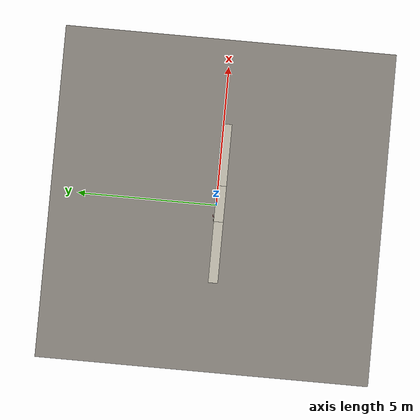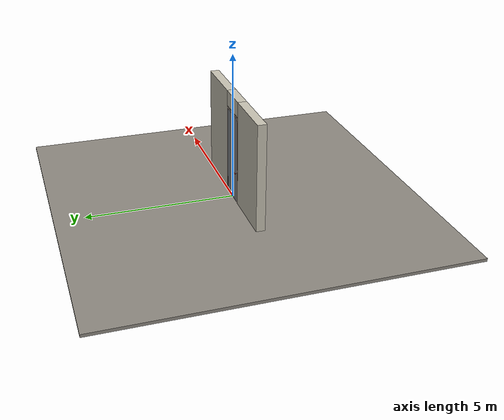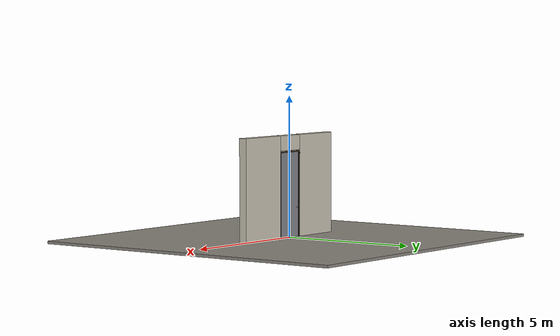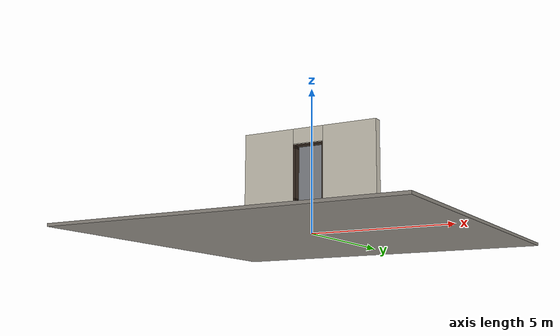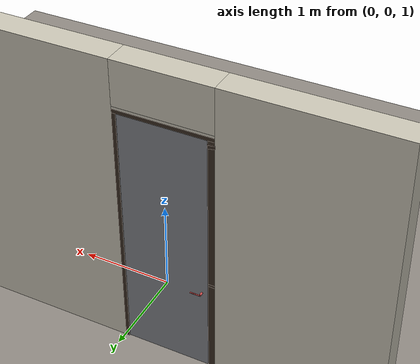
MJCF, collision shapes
<?xml version="1.0" ?>
<mujoco model="db0354_pivot_minimal">
  <compiler angle="radian" meshdir="../../hardware" texturedir="../../textures" autolimits="true" inertiafromgeom="false"/>
  <option timestep="0.002" integrator="implicitfast" cone="elliptic" impratio="10" noslip_iterations="3">
    <flag multiccd="enable"/>
  </option>
  <size memory="16M"/>
  <default>
    <geom condim="4" solref="0.005 1" solimp="0.95 0.99 0.001"/>
    <joint solreflimit="0.005 1" solimplimit="0.95 0.99 0.001"/>
    <tendon solreflimit="0.005 1"/>
    <equality solref="0.002 1"/>
  </default>
  <visual>
    <headlight ambient="0.4 0.4 0.4" diffuse="0.7 0.7 0.7" specular="0.2 0.2 0.2"/>
    <quality shadowsize="4096"/>
    <map znear="0.01" zfar="60"/>
  </visual>
  <asset>
    <mesh name="lever_57205841c3" file="lever_57205841c3.obj"/>
    <material name="mat_floor" rgba="0.55 0.53 0.5 1" specular="0.2" shininess="0.15" reflectance="0"/>
    <material name="mat_wall" rgba="0.78 0.76 0.7 1" specular="0.2" shininess="0.1" reflectance="0"/>
    <material name="mat_leaf" rgba="0.5 0.51 0.53 1" specular="0.2" shininess="0.35" reflectance="0"/>
    <material name="mat_hinge" rgba="0.65 0.66 0.68 1" specular="0.74" shininess="0.5" reflectance="0.36"/>
    <material name="mat_op_black_matte_metal" rgba="0.05 0.05 0.05 1" specular="0.38" shininess="0.3" reflectance="0.12"/>
    <material name="mat_trim" rgba="0.85 0.66 0.3 1" specular="0.8" shininess="0.75" reflectance="0.4"/>
    <material name="mat_bolt" rgba="0.75 0.76 0.77 1" specular="0.8" shininess="0.65" reflectance="0.4"/>
    <material name="mat_deadbolt" rgba="0.85 0.66 0.3 1" specular="0.8" shininess="0.75" reflectance="0.4"/>
    <material name="mat_frame" rgba="0.22 0.17 0.13 1" specular="0.8" shininess="0.6" reflectance="0.4"/>
    <material name="mat_closer" rgba="0.75 0.76 0.77 1" specular="0.8" shininess="0.65" reflectance="0.4"/>
    <texture name="skybox" type="skybox" builtin="gradient" rgb1="0.6 0.7 0.85" rgb2="0.9 0.92 0.95" width="256" height="256"/>
  </asset>
  <worldbody>
    <light name="sun" pos="1.5 -2.5 4" dir="-0.3 0.5 -0.8" directional="true" diffuse="0.8 0.8 0.8" specular="0.3 0.3 0.3" castshadow="true"/>
    <light name="fill" pos="-1.5 2.5 3" dir="0.3 -0.5 -0.7" directional="true" diffuse="0.35 0.35 0.4" castshadow="false"/>
    <camera name="robot_view" pos="0 -3.56925 2.47165" xyaxes="1 0 0 0 0.26963 0.962964" fovy="52"/>
    <camera name="far_view" pos="0 3.32825 2.47165" xyaxes="-1 0 0 0 -0.26963 0.962964" fovy="52"/>
    <camera name="iso" pos="-2.62105 -3.01745 3.02345" xyaxes="0.741536 -0.670913 0 0.242917 0.268487 0.932151" fovy="46"/>
    <camera name="detail_handle" pos="-0.156 -0.8775 1.33" xyaxes="0.97561 0.219512 0 -0.070934 0.315262 0.94635" fovy="38"/>
    <geom name="floor" type="box" size="6 6 0.05" pos="0 0 -0.05" material="mat_floor" group="0" contype="1" conaffinity="1" friction="0.8 0.005 0.0001" density="2400"/>
    <geom name="wall_left" type="box" size="0.9595 0.15 1.806" pos="-1.5405 -0.1205 1.806" material="mat_wall" group="0" contype="1" conaffinity="1" friction="0.6 0.005 0.0001" density="800"/>
    <geom name="wall_right" type="box" size="0.9745 0.15 1.806" pos="1.5255 -0.1205 1.806" material="mat_wall" group="0" contype="1" conaffinity="1" friction="0.6 0.005 0.0001" density="800"/>
    <geom name="wall_header" type="box" size="0.566 0.15 0.2625" pos="-0.015 -0.1205 3.3495" material="mat_wall" group="0" contype="1" conaffinity="1" friction="0.6 0.005 0.0001" density="800"/>
    <geom name="jamb_hinge" type="box" size="0.0225 0.15 1.506" pos="0.5285 -0.1205 1.506" material="mat_frame" group="0" contype="1" conaffinity="1" friction="0.6 0.005 0.0001" density="300"/>
    <geom name="strike_1190_wall_n" type="box" size="0.0375 0.1305 0.0155" pos="-0.5435 -0.14 1.19" material="mat_frame" group="0" contype="1" conaffinity="1" friction="0.6 0.005 0.0001" density="300"/>
    <geom name="strike_1190_wall_p" type="box" size="0.0375 0.01 0.0155" pos="-0.5435 0.0195 1.19" material="mat_frame" group="0" contype="1" conaffinity="1" friction="0.6 0.005 0.0001" density="300"/>
    <geom name="strike_1190_back" type="box" size="0.0228 0.0095 0.0155" pos="-0.5582 0 1.19" material="mat_frame" group="0" contype="1" conaffinity="1" friction="0.6 0.005 0.0001" density="300"/>
    <geom name="strike_2958_wall_n" type="box" size="0.0375 0.1315 0.019" pos="-0.5435 -0.139 2.958" material="mat_frame" group="0" contype="1" conaffinity="1" friction="0.6 0.005 0.0001" density="300"/>
    <geom name="strike_2958_wall_p" type="box" size="0.0375 0.008 0.019" pos="-0.5435 0.0155 2.958" material="mat_frame" group="0" contype="1" conaffinity="1" friction="0.6 0.005 0.0001" density="300"/>
    <geom name="strike_2958_ramp" type="box" size="0.0375 0.015403 0.019" pos="-0.546019 0.029979 2.958" quat="0.993439 0 0 0.114365" material="mat_frame" group="0" contype="1" conaffinity="1" friction="0.12 0.005 0.0001" density="300"/>
    <geom name="strike_2958_ramp_n" type="box" size="0.0375 0.015403 0.019" pos="-0.546019 -0.017979 2.958" quat="0.993439 0 0 -0.114365" material="mat_frame" group="0" contype="1" conaffinity="1" friction="0.12 0.005 0.0001" density="300"/>
    <geom name="strike_2958_back" type="box" size="0.0325 0.0075 0.019" pos="-0.5485 0 2.958" material="mat_frame" group="0" contype="1" conaffinity="1" friction="0.6 0.005 0.0001" density="300"/>
    <geom name="jamb_strike_0" type="box" size="0.0375 0.15 0.58725" pos="-0.5435 -0.1205 0.58725" material="mat_frame" group="0" contype="1" conaffinity="1" friction="0.6 0.005 0.0001" density="300"/>
    <geom name="jamb_strike_1" type="box" size="0.0375 0.15 0.86675" pos="-0.5435 -0.1205 2.07225" material="mat_frame" group="0" contype="1" conaffinity="1" friction="0.6 0.005 0.0001" density="300"/>
    <geom name="jamb_strike_2" type="box" size="0.0375 0.15 0.0175" pos="-0.5435 -0.1205 2.9945" material="mat_frame" group="0" contype="1" conaffinity="1" friction="0.6 0.005 0.0001" density="300"/>
    <geom name="jamb_head" type="box" size="0.566 0.15 0.0225" pos="-0.015 -0.1205 3.0345" material="mat_frame" group="0" contype="1" conaffinity="1" friction="0.6 0.005 0.0001" density="300"/>
    <geom name="head_stud" type="box" size="0.566 0.15 0.015" pos="-0.015 -0.1205 3.072" material="mat_wall" group="0" contype="1" conaffinity="1" friction="0.6 0.005 0.0001" density="500"/>
    <site name="approach_point" pos="0 -1.5 0" quat="1 0 0 0" size="0.05" rgba="0.2 0.9 0.2 0.5" group="4"/>
    <site name="goal_point" pos="0 1.5 0" quat="1 0 0 0" size="0.05" rgba="0.2 0.9 0.2 0.5" group="4"/>
    <site name="door_plane_center" pos="0 0 1.506" quat="1 0 0 0" size="0.02" rgba="0.2 0.9 0.2 0.5" group="4"/>
    <body name="leaf" pos="0.506 0 0">
      <inertial pos="-0.503 0 1.508" mass="102.804599" quat="-0.5 0.5 0.5 0.5" diaginertia="8.584398228 77.120797846 85.670499522"/>
      <joint name="leaf_hinge" type="hinge" axis="0 0 -1" pos="-0.019 0.0325 0" limited="true" range="0 2.443461" damping="8.5418" frictionloss="0.924991" stiffness="35.039552" springref="-1.679816" armature="0.02"/>
      <geom name="leaf_slab" type="box" size="0.5 0.0225 1.5" pos="-0.503 0 1.508" material="mat_leaf" group="0" contype="1" conaffinity="1" friction="0.4 0.005 0.0001" density="1"/>
      <site name="leaf_edge_mid" pos="-1.003 0 1.5" quat="1 0 0 0" size="0.02" rgba="0.2 0.9 0.2 0.5" group="4"/>
      <body name="leaf_handle" pos="-0.938 0 1.05">
        <inertial pos="0.019728 0 0" mass="0.753175" quat="0.707107 0 0 -0.707107" diaginertia="0.000986163 0.002617785 0.003500299"/>
        <joint name="leaf_handle_hinge" type="hinge" axis="0 1 0" limited="true" range="0 0.87" damping="0.212417" frictionloss="0.042" stiffness="1" springref="-0.35" armature="0.01"/>
        <geom name="leaf_handle_lever_n" type="mesh" mesh="lever_57205841c3" pos="0 -0.0225 0" quat="0 0 -0.707107 0.707107" material="mat_op_black_matte_metal" group="1" contype="0" conaffinity="0" density="3000"/>
        <geom name="leaf_handle_lever_col_n" type="capsule" size="0.007 0.053" pos="0.06 -0.0775 0" quat="0.707107 0 0.707107 0" material="mat_op_black_matte_metal" group="3" contype="1" conaffinity="1" rgba="0.8 0.3 0.3 0.25" friction="0.7 0.01 0.0001" density="3000"/>
        <geom name="leaf_handle_hub_col_n" type="cylinder" size="0.012 0.022" pos="0 -0.0525 0" quat="0.707107 -0.707107 0 0" material="mat_op_black_matte_metal" group="3" contype="1" conaffinity="1" rgba="0.8 0.3 0.3 0.25" friction="0.6 0.005 0.0001" density="3000"/>
        <geom name="leaf_handle_lever_p" type="mesh" mesh="lever_57205841c3" pos="0 0.0225 0" quat="0 0 0.707107 0.707107" material="mat_op_black_matte_metal" group="1" contype="0" conaffinity="0" density="3000"/>
        <geom name="leaf_handle_lever_col_p" type="capsule" size="0.007 0.053" pos="0.06 0.0775 0" quat="0.707107 0 0.707107 0" material="mat_op_black_matte_metal" group="3" contype="1" conaffinity="1" rgba="0.8 0.3 0.3 0.25" friction="0.7 0.01 0.0001" density="3000"/>
        <geom name="leaf_handle_hub_col_p" type="cylinder" size="0.012 0.022" pos="0 0.0525 0" quat="0.707107 -0.707107 0 0" material="mat_op_black_matte_metal" group="3" contype="1" conaffinity="1" rgba="0.8 0.3 0.3 0.25" friction="0.6 0.005 0.0001" density="3000"/>
        <site name="leaf_handle_grip_n" pos="0.096 -0.0775 0" quat="1 0 0 0" size="0.012" rgba="0.2 0.9 0.2 0.5" group="4"/>
        <site name="leaf_handle_grip_p" pos="0.096 0.0775 0" quat="1 0 0 0" size="0.012" rgba="0.2 0.9 0.2 0.5" group="4"/>
      </body>
    </body>
  </worldbody>
  <sensor>
    <jointpos name="leaf_hinge_pos" joint="leaf_hinge"/>
    <jointvel name="leaf_hinge_vel" joint="leaf_hinge"/>
    <jointpos name="leaf_handle_hinge_pos" joint="leaf_handle_hinge"/>
    <jointvel name="leaf_handle_hinge_vel" joint="leaf_handle_hinge"/>
  </sensor>
</mujoco>
